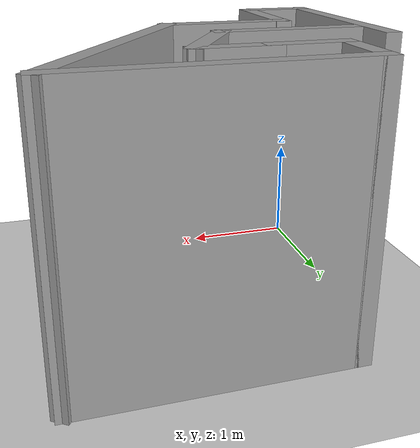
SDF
<sdf version="1.7">
 <world name="default">
  <plugin name="gazebo_ros_state" filename="libgazebo_ros_state.so"/>
  <light name="sun" type="directional">
   <pose>0 0 10 0 -0 0</pose>
   <diffuse>0.8 0.8 0.8 1</diffuse>
   <specular>0.2 0.2 0.2 1</specular>
   <attenuation>
    <range>1000</range>
    <constant>0.9</constant>
    <linear>0.01</linear>
    <quadratic>0.001</quadratic>
   </attenuation>
   <direction>-0.5 0.1 -0.9</direction>
   <spot><inner_angle>0</inner_angle><outer_angle>0</outer_angle><falloff>0</falloff></spot>
  </light>
  <model name="ground_plane">
   <static>1</static>
   <link name="link">
    <collision name="collision">
     <geometry><plane><normal>0 0 1</normal><size>100 100</size></plane></geometry>
     <surface>
      <contact><collide_bitmask>65535</collide_bitmask></contact>
      <friction><ode><mu>100</mu><mu2>50</mu2></ode></friction>
     </surface>
    </collision>
    <visual name="visual">
     <cast_shadows>0</cast_shadows>
     <geometry><plane><normal>0 0 1</normal><size>100 100</size></plane></geometry>
     <material>
      <script><uri>file://media/materials/scripts/gazebo.material</uri><name>Gazebo/Grey</name></script>
     </material>
    </visual>
   </link>
  </model>
  <gravity>0 0 -9.8</gravity>
  <magnetic_field>6e-06 2.3e-05 -4.2e-05</magnetic_field>
  <atmosphere type="adiabatic"/>
  <physics type="ode">
   <max_step_size>0.001</max_step_size>
   <real_time_factor>1</real_time_factor>
   <real_time_update_rate>1000</real_time_update_rate>
  </physics>
  <scene><ambient>0.4 0.4 0.4 1</ambient><background>0.7 0.7 0.7 1</background><shadows>1</shadows></scene>
  <audio><device>default</device></audio>
  <spherical_coordinates>
   <surface_model>EARTH_WGS84</surface_model>
   <latitude_deg>0</latitude_deg>
   <longitude_deg>0</longitude_deg>
   <elevation>0</elevation>
   <heading_deg>0</heading_deg>
  </spherical_coordinates>
  <model name="omnibot">
   <link name="base_link">
    <inertial>
     <pose>0 0 0.085583 0 -0 0</pose>
     <mass>0.6</mass>
     <inertia>
      <ixx>0.00273319</ixx>
      <ixy>0</ixy>
      <ixz>0</ixz>
      <iyy>0.00539319</iyy>
      <iyz>0</iyz>
      <izz>0.00627633</izz>
     </inertia>
    </inertial>
    <collision name="base_link_collision">
     <pose>0 0 0.072 0 -0 0</pose>
     <geometry><box><size>0.26 0.25 0.14</size></box></geometry>
    </collision>
    <collision name="base_link_fixed_joint_lump__base_laser_collision_1">
     <pose>0 0 0.1535 0 -0 0</pose>
     <geometry><cylinder><length>0.027</length><radius>0.035</radius></cylinder></geometry>
    </collision>
    <visual name="base_link_visual">
     <pose>0 0 0.072 0 -0 0</pose>
     <geometry><box><size>0.26 0.25 0.14</size></box></geometry>
     <material>
      <script><name>Gazebo/Red</name><uri>file://media/materials/scripts/gazebo.material</uri></script>
     </material>
    </visual>
    <visual name="base_link_fixed_joint_lump__base_laser_visual_1">
     <pose>0 0 0.1535 0 -0 0</pose>
     <geometry><cylinder><length>0.027</length><radius>0.035</radius></cylinder></geometry>
     <material>
      <script><name>Gazebo/Blue</name><uri>file://media/materials/scripts/gazebo.material</uri></script>
     </material>
    </visual>
    <sensor name="base_laser" type="ray">
     <visualize>0</visualize>
     <update_rate>10</update_rate>
     <ray>
      <scan>
       <horizontal>
        <samples>360</samples>
        <resolution>1</resolution>
        <min_angle>-3.14159</min_angle>
        <max_angle>3.14159</max_angle>
       </horizontal>
       <vertical><samples>1</samples><min_angle>0</min_angle><max_angle>0</max_angle></vertical>
      </scan>
      <range><min>0.15</min><max>12</max><resolution>0.01</resolution></range>
     </ray>
     <plugin name="base_laser_controller" filename="libgazebo_ros_ray_sensor.so">
      <ros><argument>~/out:=scan</argument></ros>
      <output_type>sensor_msgs/LaserScan</output_type>
      <frameName>base_laser</frameName>
     </plugin>
     <pose>0 0 0.1535 0 -0 0</pose>
    </sensor>
   </link>
   <static>0</static>
   <plugin name="gazebo_ros_control" filename="libgazebo_ros_planar_move.so">
    <commandTopic>cmd_vel</commandTopic>
    <odometryTopic>odom</odometryTopic>
    <odometryFrame>odom</odometryFrame>
    <odometryRate>20.0</odometryRate>
    <robotBaseFrame>base_footprint</robotBaseFrame>
   </plugin>
   <plugin name="gazebo_ros_state" filename="libgazebo_ros_state.so">
    <ros><namespace>/</namespace><argument>model_states:=model_states_demo</argument></ros>
    <update_rate>1.0</update_rate>
   </plugin>
   <pose>0.624718 2.30794 -0.002 0 -0 0.020377</pose>
  </model>
  <model name="Untitled2">
   <pose>1.30789 1.61729 0 0 -0 0</pose>
   <link name="Wall_0">
    <collision name="Wall_0_Collision">
     <geometry><box><size>2 0.15 2.5</size></box></geometry>
     <pose>0 0 1.25 0 -0 0</pose>
    </collision>
    <visual name="Wall_0_Visual">
     <pose>0 0 1.25 0 -0 0</pose>
     <geometry><box><size>2 0.15 2.5</size></box></geometry>
     <material>
      <script><uri>file://media/materials/scripts/gazebo.material</uri><name>Gazebo/Grey</name></script>
      <ambient>1 1 1 1</ambient>
     </material>
     <meta><layer>0</layer></meta>
    </visual>
    <pose>-1.5675 -0.9575 0 0 -0 -1.5708</pose>
   </link>
   <link name="Wall_1">
    <collision name="Wall_1_Collision">
     <geometry><box><size>0.75 0.15 2.5</size></box></geometry>
     <pose>0 0 1.25 0 -0 0</pose>
    </collision>
    <visual name="Wall_1_Visual">
     <pose>0 0 1.25 0 -0 0</pose>
     <geometry><box><size>0.75 0.15 2.5</size></box></geometry>
     <material>
      <script><uri>file://media/materials/scripts/gazebo.material</uri><name>Gazebo/Grey</name></script>
      <ambient>1 1 1 1</ambient>
     </material>
     <meta><layer>0</layer></meta>
    </visual>
    <pose>-1.2675 -1.8825 0 0 -0 0</pose>
   </link>
   <link name="Wall_10">
    <collision name="Wall_10_Collision">
     <geometry><box><size>2.5 0.15 2.5</size></box></geometry>
     <pose>0 0 1.25 0 -0 0</pose>
    </collision>
    <visual name="Wall_10_Visual">
     <pose>0 0 1.25 0 -0 0</pose>
     <geometry><box><size>2.5 0.15 2.5</size></box></geometry>
     <material>
      <script><uri>file://media/materials/scripts/gazebo.material</uri><name>Gazebo/Grey</name></script>
      <ambient>1 1 1 1</ambient>
     </material>
     <meta><layer>0</layer></meta>
    </visual>
    <pose>0.1925 0.923622 0 0 -0 0</pose>
   </link>
   <link name="Wall_11">
    <collision name="Wall_11_Collision">
     <geometry><box><size>2.40448 0.15 2.5</size></box></geometry>
     <pose>0 0 1.25 0 -0 0</pose>
    </collision>
    <visual name="Wall_11_Visual">
     <pose>0 0 1.25 0 -0 0</pose>
     <geometry><box><size>2.40448 0.15 2.5</size></box></geometry>
     <material>
      <script><uri>file://media/materials/scripts/gazebo.material</uri><name>Gazebo/Grey</name></script>
      <ambient>1 1 1 1</ambient>
     </material>
     <meta><layer>0</layer></meta>
    </visual>
    <pose>0.75 -0.019439 0 0 -0 -2.15053</pose>
   </link>
   <link name="Wall_2">
    <collision name="Wall_2_Collision">
     <geometry><box><size>1.08 0.15 2.5</size></box></geometry>
     <pose>0 0 1.25 0 -0 0</pose>
    </collision>
    <visual name="Wall_2_Visual">
     <pose>0 0 1.25 0 -0 0</pose>
     <geometry><box><size>1.08 0.15 2.5</size></box></geometry>
     <material>
      <script><uri>file://media/materials/scripts/gazebo.material</uri><name>Gazebo/Grey</name></script>
      <ambient>1 1 1 1</ambient>
     </material>
     <meta><layer>0</layer></meta>
    </visual>
    <pose>-0.9675 -1.4175 0 0 -0 1.5708</pose>
   </link>
   <link name="Wall_3">
    <collision name="Wall_3_Collision">
     <geometry><box><size>1.25 0.15 2.5</size></box></geometry>
     <pose>0 0 1.25 0 -0 0</pose>
    </collision>
    <visual name="Wall_3_Visual">
     <pose>0 0 1.25 0 -0 0</pose>
     <geometry><box><size>1.25 0.15 2.5</size></box></geometry>
     <material>
      <script><uri>file://media/materials/scripts/gazebo.material</uri><name>Gazebo/Grey</name></script>
      <ambient>1 1 1 1</ambient>
     </material>
     <meta><layer>0</layer></meta>
    </visual>
    <pose>-0.4175 -0.9625 0 0 -0 0</pose>
   </link>
   <link name="Wall_5">
    <collision name="Wall_5_Collision">
     <geometry><box><size>1.5 0.15 2.5</size></box></geometry>
     <pose>0 0 1.25 0 -0 0</pose>
    </collision>
    <visual name="Wall_5_Visual">
     <pose>0 0 1.25 0 -0 0</pose>
     <geometry><box><size>1.5 0.15 2.5</size></box></geometry>
     <material>
      <script><uri>file://media/materials/scripts/gazebo.material</uri><name>Gazebo/Grey</name></script>
      <ambient>1 1 1 1</ambient>
     </material>
     <meta><layer>0</layer></meta>
    </visual>
    <pose>-0.8825 -0.4125 0 0 -0 0</pose>
   </link>
   <link name="Wall_6">
    <collision name="Wall_6_Collision">
     <geometry><box><size>1 0.15 2.5</size></box></geometry>
     <pose>0 0 1.25 0 -0 0</pose>
    </collision>
    <visual name="Wall_6_Visual">
     <pose>0 0 1.25 0 -0 0</pose>
     <geometry><box><size>1 0.15 2.5</size></box></geometry>
     <material>
      <script><uri>file://media/materials/scripts/gazebo.material</uri><name>Gazebo/Grey</name></script>
      <ambient>1 1 1 1</ambient>
     </material>
     <meta><layer>0</layer></meta>
    </visual>
    <pose>0.005 -0.044439 0 0 -0 1.0472</pose>
   </link>
   <link name="Wall_7">
    <collision name="Wall_7_Collision">
     <geometry><box><size>0.75 0.15 2.5</size></box></geometry>
     <pose>0 0 1.25 0 -0 0</pose>
    </collision>
    <visual name="Wall_7_Visual">
     <pose>0 0 1.25 0 -0 0</pose>
     <geometry><box><size>0.75 0.15 2.5</size></box></geometry>
     <material>
      <script><uri>file://media/materials/scripts/gazebo.material</uri><name>Gazebo/Grey</name></script>
      <ambient>1 1 1 1</ambient>
     </material>
     <meta><layer>0</layer></meta>
    </visual>
    <pose>-0.0825 0.323622 0 0 -0 3.14159</pose>
   </link>
   <link name="Wall_8">
    <collision name="Wall_8_Collision">
     <geometry><box><size>0.75 0.15 2.5</size></box></geometry>
     <pose>0 0 1.25 0 -0 0</pose>
    </collision>
    <visual name="Wall_8_Visual">
     <pose>0 0 1.25 0 -0 0</pose>
     <geometry><box><size>0.75 0.15 2.5</size></box></geometry>
     <material>
      <script><uri>file://media/materials/scripts/gazebo.material</uri><name>Gazebo/Grey</name></script>
      <ambient>1 1 1 1</ambient>
     </material>
     <meta><layer>0</layer></meta>
    </visual>
    <pose>-0.6825 0.323622 0 0 -0 3.14159</pose>
   </link>
   <link name="Wall_9">
    <collision name="Wall_9_Collision">
     <geometry><box><size>0.75 0.15 2.5</size></box></geometry>
     <pose>0 0 1.25 0 -0 0</pose>
    </collision>
    <visual name="Wall_9_Visual">
     <pose>0 0 1.25 0 -0 0</pose>
     <geometry><box><size>0.75 0.15 2.5</size></box></geometry>
     <material>
      <script><uri>file://media/materials/scripts/gazebo.material</uri><name>Gazebo/Grey</name></script>
      <ambient>1 1 1 1</ambient>
     </material>
     <meta><layer>0</layer></meta>
    </visual>
    <pose>-0.9825 0.623622 0 0 -0 1.5708</pose>
   </link>
   <static>1</static>
  </model>
 </world>
</sdf>
